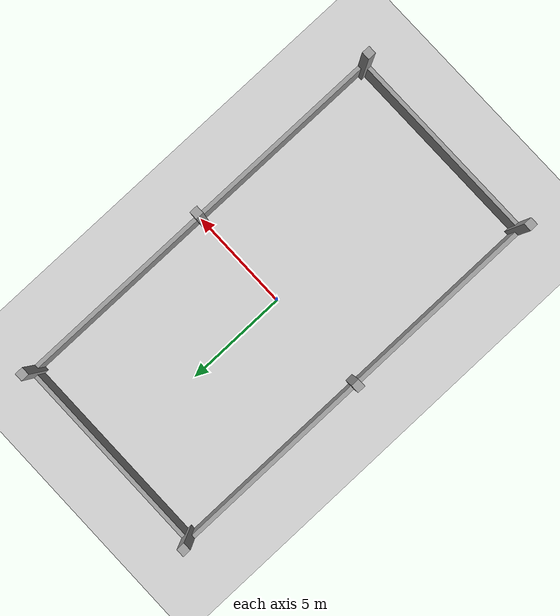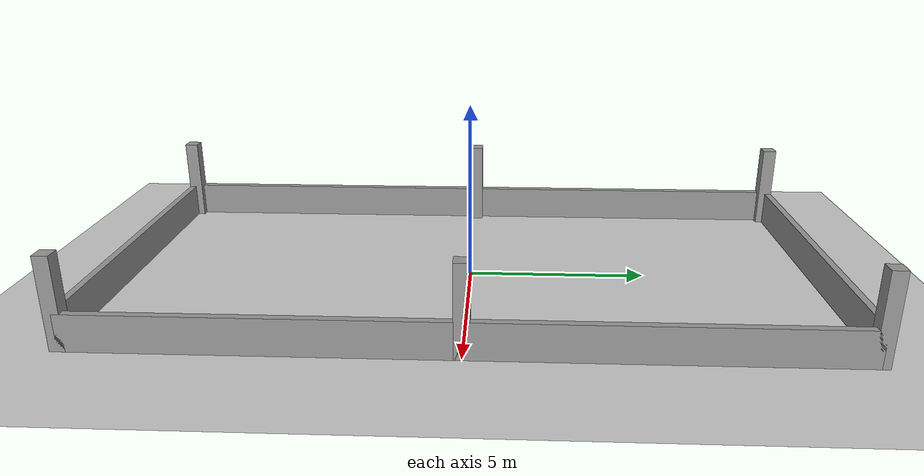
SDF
<sdf version="1.7">
 <world name="default">
  <light name="sun" type="directional">
   <pose>0 0 10 0 -0 0</pose>
   <diffuse>0.8 0.8 0.8 1</diffuse>
   <specular>0.2 0.2 0.2 1</specular>
   <attenuation>
    <range>1000</range>
    <constant>0.9</constant>
    <linear>0.01</linear>
    <quadratic>0.001</quadratic>
   </attenuation>
   <direction>-0.5 0.1 -0.9</direction>
   <spot><inner_angle>0</inner_angle><outer_angle>0</outer_angle><falloff>0</falloff></spot>
  </light>
  <model name="ground_plane">
   <static>1</static>
   <link name="link">
    <collision name="collision">
     <geometry><plane><normal>0 0 1</normal><size>100 100</size></plane></geometry>
     <surface>
      <contact><collide_bitmask>65535</collide_bitmask></contact>
      <friction><ode><mu>100</mu><mu2>50</mu2></ode></friction>
     </surface>
    </collision>
    <visual name="visual">
     <cast_shadows>0</cast_shadows>
     <geometry><plane><normal>0 0 1</normal><size>100 100</size></plane></geometry>
     <material>
      <script><uri>file://media/materials/scripts/gazebo.material</uri><name>Gazebo/Grey</name></script>
     </material>
    </visual>
   </link>
  </model>
  <gravity>0 0 -9.8</gravity>
  <magnetic_field>6e-06 2.3e-05 -4.2e-05</magnetic_field>
  <atmosphere type="adiabatic"/>
  <physics type="ode">
   <max_step_size>0.001</max_step_size>
   <real_time_factor>1</real_time_factor>
   <real_time_update_rate>1000</real_time_update_rate>
  </physics>
  <scene><ambient>0.4 0.4 0.4 1</ambient><background>0.7 0.7 0.7 1</background><shadows>1</shadows></scene>
  <spherical_coordinates>
   <surface_model>EARTH_WGS84</surface_model>
   <latitude_deg>0</latitude_deg>
   <longitude_deg>0</longitude_deg>
   <elevation>0</elevation>
   <heading_deg>0</heading_deg>
  </spherical_coordinates>
  <model name="basic_tcs_outline">
   <link name="link_1">
    <inertial>
     <mass>3900</mass>
     <inertia><ixx>338</ixx><ixy>0</ixy><ixz>0</ixz><iyy>31220.3</iyy><iyz>0</iyz><izz>30908.3</izz></inertia>
    </inertial>
    <pose>-9.85 -0 -0.45 0 -0 1.5707</pose>
    <gravity>0</gravity>
    <visual name="visual">
     <geometry><box><size>9.75 0.2 1</size></box></geometry>
     <material>
      <lighting>1</lighting>
      <script><uri>file://media/materials/scripts/gazebo.material</uri><name>Gazebo/Grey</name></script>
      <shader type="pixel"><normal_map>__default__</normal_map></shader>
      <ambient>0.8 0.8 0.8 1</ambient>
      <diffuse>0.7 0.7 0.7 1</diffuse>
      <specular>0.01 0.01 0.01 1</specular>
      <emissive>0 0 0 1</emissive>
     </material>
    </visual>
    <collision name="collision">
     <geometry><box><size>9.75 0.2 1</size></box></geometry>
     <surface>
      <friction>
       <ode><mu>1</mu><mu2>1</mu2><fdir1>0 0 0</fdir1><slip1>0</slip1><slip2>0</slip2></ode>
       <torsional>
        <coefficient>1</coefficient>
        <patch_radius>0</patch_radius>
        <surface_radius>0</surface_radius>
        <use_patch_radius>1</use_patch_radius>
        <ode><slip>0</slip></ode>
       </torsional>
      </friction>
      <bounce><restitution_coefficient>0</restitution_coefficient><threshold>1e+06</threshold></bounce>
      <contact>
       <collide_without_contact>0</collide_without_contact>
       <collide_without_contact_bitmask>1</collide_without_contact_bitmask>
       <collide_bitmask>1</collide_bitmask>
       <ode>
        <soft_cfm>0</soft_cfm>
        <soft_erp>0.2</soft_erp>
        <kp>1e+13</kp>
        <kd>1</kd>
        <max_vel>0.01</max_vel>
        <min_depth>0</min_depth>
       </ode>
       <bullet>
        <split_impulse>1</split_impulse>
        <split_impulse_penetration_threshold>-0.01</split_impulse_penetration_threshold>
        <soft_cfm>0</soft_cfm>
        <soft_erp>0.2</soft_erp>
        <kp>1e+13</kp>
        <kd>1</kd>
       </bullet>
      </contact>
     </surface>
    </collision>
   </link>
   <link name="link_1_clone">
    <inertial>
     <mass>3900</mass>
     <inertia><ixx>338</ixx><ixy>0</ixy><ixz>0</ixz><iyy>31220.3</iyy><iyz>0</iyz><izz>30908.3</izz></inertia>
     <pose>0 0 0 0 -0 1.5707</pose>
    </inertial>
    <pose>9.85 0 -0.45 0 0 -1.5708</pose>
    <gravity>0</gravity>
    <visual name="visual">
     <geometry><box><size>9.75 0.2 1</size></box></geometry>
     <material>
      <lighting>1</lighting>
      <script><uri>file://media/materials/scripts/gazebo.material</uri><name>Gazebo/Grey</name></script>
      <shader type="pixel"><normal_map>__default__</normal_map></shader>
      <ambient>0.8 0.8 0.8 1</ambient>
      <diffuse>0.7 0.7 0.7 1</diffuse>
      <specular>0.01 0.01 0.01 1</specular>
      <emissive>0 0 0 1</emissive>
     </material>
    </visual>
    <collision name="collision">
     <geometry><box><size>9.75 0.2 1</size></box></geometry>
     <surface>
      <friction>
       <ode><mu>1</mu><mu2>1</mu2><fdir1>0 0 0</fdir1><slip1>0</slip1><slip2>0</slip2></ode>
       <torsional>
        <coefficient>1</coefficient>
        <patch_radius>0</patch_radius>
        <surface_radius>0</surface_radius>
        <use_patch_radius>1</use_patch_radius>
        <ode><slip>0</slip></ode>
       </torsional>
      </friction>
      <bounce><restitution_coefficient>0</restitution_coefficient><threshold>1e+06</threshold></bounce>
      <contact>
       <collide_without_contact>0</collide_without_contact>
       <collide_without_contact_bitmask>1</collide_without_contact_bitmask>
       <collide_bitmask>1</collide_bitmask>
       <ode>
        <soft_cfm>0</soft_cfm>
        <soft_erp>0.2</soft_erp>
        <kp>1e+13</kp>
        <kd>1</kd>
        <max_vel>0.01</max_vel>
        <min_depth>0</min_depth>
       </ode>
       <bullet>
        <split_impulse>1</split_impulse>
        <split_impulse_penetration_threshold>-0.01</split_impulse_penetration_threshold>
        <soft_cfm>0</soft_cfm>
        <soft_erp>0.2</soft_erp>
        <kp>1e+13</kp>
        <kd>1</kd>
       </bullet>
      </contact>
     </surface>
    </collision>
   </link>
   <link name="link_2">
    <inertial>
     <mass>7800</mass>
     <inertia><ixx>676</ixx><ixy>0</ixy><ixz>0</ixz><iyy>247812</iyy><iyz>0</iyz><izz>247188</izz></inertia>
    </inertial>
    <pose>0 -4.975 -0.45 -0 -0 -0</pose>
    <gravity>0</gravity>
    <visual name="visual">
     <geometry><box><size>19.5 0.2 1</size></box></geometry>
     <material>
      <lighting>1</lighting>
      <script><uri>file://media/materials/scripts/gazebo.material</uri><name>Gazebo/Grey</name></script>
      <shader type="pixel"><normal_map>__default__</normal_map></shader>
      <ambient>0.8 0.8 0.8 1</ambient>
      <diffuse>0.7 0.7 0.7 1</diffuse>
      <specular>0.01 0.01 0.01 1</specular>
      <emissive>0 0 0 1</emissive>
     </material>
    </visual>
    <collision name="collision">
     <geometry><box><size>19.5 0.2 1</size></box></geometry>
     <surface>
      <friction>
       <ode><mu>1</mu><mu2>1</mu2><fdir1>0 0 0</fdir1><slip1>0</slip1><slip2>0</slip2></ode>
       <torsional>
        <coefficient>1</coefficient>
        <patch_radius>0</patch_radius>
        <surface_radius>0</surface_radius>
        <use_patch_radius>1</use_patch_radius>
        <ode><slip>0</slip></ode>
       </torsional>
      </friction>
      <bounce><restitution_coefficient>0</restitution_coefficient><threshold>1e+06</threshold></bounce>
      <contact>
       <collide_without_contact>0</collide_without_contact>
       <collide_without_contact_bitmask>1</collide_without_contact_bitmask>
       <collide_bitmask>1</collide_bitmask>
       <ode>
        <soft_cfm>0</soft_cfm>
        <soft_erp>0.2</soft_erp>
        <kp>1e+13</kp>
        <kd>1</kd>
        <max_vel>0.01</max_vel>
        <min_depth>0</min_depth>
       </ode>
       <bullet>
        <split_impulse>1</split_impulse>
        <split_impulse_penetration_threshold>-0.01</split_impulse_penetration_threshold>
        <soft_cfm>0</soft_cfm>
        <soft_erp>0.2</soft_erp>
        <kp>1e+13</kp>
        <kd>1</kd>
       </bullet>
      </contact>
     </surface>
    </collision>
   </link>
   <link name="link_2_clone">
    <inertial>
     <mass>7800</mass>
     <inertia><ixx>676</ixx><ixy>0</ixy><ixz>0</ixz><iyy>247812</iyy><iyz>0</iyz><izz>247188</izz></inertia>
    </inertial>
    <pose>-0 4.975 -0.45 -0 -0 -0</pose>
    <gravity>0</gravity>
    <visual name="visual">
     <geometry><box><size>19.5 0.2 1</size></box></geometry>
     <material>
      <lighting>1</lighting>
      <script><uri>file://media/materials/scripts/gazebo.material</uri><name>Gazebo/Grey</name></script>
      <shader type="pixel"><normal_map>__default__</normal_map></shader>
      <ambient>0.8 0.8 0.8 1</ambient>
      <diffuse>0.7 0.7 0.7 1</diffuse>
      <specular>0.01 0.01 0.01 1</specular>
      <emissive>0 0 0 1</emissive>
     </material>
    </visual>
    <collision name="collision">
     <geometry><box><size>19.5 0.2 1</size></box></geometry>
     <surface>
      <friction>
       <ode><mu>1</mu><mu2>1</mu2><fdir1>0 0 0</fdir1><slip1>0</slip1><slip2>0</slip2></ode>
       <torsional>
        <coefficient>1</coefficient>
        <patch_radius>0</patch_radius>
        <surface_radius>0</surface_radius>
        <use_patch_radius>1</use_patch_radius>
        <ode><slip>0</slip></ode>
       </torsional>
      </friction>
      <bounce><restitution_coefficient>0</restitution_coefficient><threshold>1e+06</threshold></bounce>
      <contact>
       <collide_without_contact>0</collide_without_contact>
       <collide_without_contact_bitmask>1</collide_without_contact_bitmask>
       <collide_bitmask>1</collide_bitmask>
       <ode>
        <soft_cfm>0</soft_cfm>
        <soft_erp>0.2</soft_erp>
        <kp>1e+13</kp>
        <kd>1</kd>
        <max_vel>0.01</max_vel>
        <min_depth>0</min_depth>
       </ode>
       <bullet>
        <split_impulse>1</split_impulse>
        <split_impulse_penetration_threshold>-0.01</split_impulse_penetration_threshold>
        <soft_cfm>0</soft_cfm>
        <soft_erp>0.2</soft_erp>
        <kp>1e+13</kp>
        <kd>1</kd>
       </bullet>
      </contact>
     </surface>
    </collision>
   </link>
   <link name="link_3">
    <inertial>
     <mass>800</mass>
     <inertia><ixx>427.333</ixx><ixy>0</ixy><ixz>0</ixz><iyy>427.333</iyy><iyz>0</iyz><izz>21.3333</izz></inertia>
    </inertial>
    <pose>-9.75 -4.875 0.3 -0 -0 -0</pose>
    <gravity>0</gravity>
    <visual name="visual">
     <geometry><box><size>0.4 0.4 2.5</size></box></geometry>
     <material>
      <lighting>1</lighting>
      <script><uri>file://media/materials/scripts/gazebo.material</uri><name>Gazebo/Grey</name></script>
      <shader type="pixel"><normal_map>__default__</normal_map></shader>
      <ambient>1 1 1 1</ambient>
      <diffuse>0.7 0.7 0.7 1</diffuse>
      <specular>0.01 0.01 0.01 1</specular>
      <emissive>0 0 0 1</emissive>
     </material>
    </visual>
    <collision name="collision">
     <geometry><box><size>0.4 0.4 2.5</size></box></geometry>
     <surface>
      <friction>
       <ode><mu>1</mu><mu2>1</mu2><fdir1>0 0 0</fdir1><slip1>0</slip1><slip2>0</slip2></ode>
       <torsional>
        <coefficient>1</coefficient>
        <patch_radius>0</patch_radius>
        <surface_radius>0</surface_radius>
        <use_patch_radius>1</use_patch_radius>
        <ode><slip>0</slip></ode>
       </torsional>
      </friction>
      <bounce><restitution_coefficient>0</restitution_coefficient><threshold>1e+06</threshold></bounce>
      <contact>
       <collide_without_contact>0</collide_without_contact>
       <collide_without_contact_bitmask>1</collide_without_contact_bitmask>
       <collide_bitmask>1</collide_bitmask>
       <ode>
        <soft_cfm>0</soft_cfm>
        <soft_erp>0.2</soft_erp>
        <kp>1e+13</kp>
        <kd>1</kd>
        <max_vel>0.01</max_vel>
        <min_depth>0</min_depth>
       </ode>
       <bullet>
        <split_impulse>1</split_impulse>
        <split_impulse_penetration_threshold>-0.01</split_impulse_penetration_threshold>
        <soft_cfm>0</soft_cfm>
        <soft_erp>0.2</soft_erp>
        <kp>1e+13</kp>
        <kd>1</kd>
       </bullet>
      </contact>
     </surface>
    </collision>
   </link>
   <link name="link_3_clone">
    <inertial>
     <mass>800</mass>
     <inertia><ixx>427.333</ixx><ixy>0</ixy><ixz>0</ixz><iyy>427.333</iyy><iyz>0</iyz><izz>21.3333</izz></inertia>
    </inertial>
    <pose>-9.75 4.875 0.3 -0 -0 -0</pose>
    <gravity>0</gravity>
    <visual name="visual">
     <geometry><box><size>0.4 0.4 2.5</size></box></geometry>
     <material>
      <lighting>1</lighting>
      <script><uri>file://media/materials/scripts/gazebo.material</uri><name>Gazebo/Grey</name></script>
      <shader type="pixel"><normal_map>__default__</normal_map></shader>
      <ambient>1 1 1 1</ambient>
      <diffuse>0.7 0.7 0.7 1</diffuse>
      <specular>0.01 0.01 0.01 1</specular>
      <emissive>0 0 0 1</emissive>
     </material>
    </visual>
    <collision name="collision">
     <geometry><box><size>0.4 0.4 2.5</size></box></geometry>
     <surface>
      <friction>
       <ode><mu>1</mu><mu2>1</mu2><fdir1>0 0 0</fdir1><slip1>0</slip1><slip2>0</slip2></ode>
       <torsional>
        <coefficient>1</coefficient>
        <patch_radius>0</patch_radius>
        <surface_radius>0</surface_radius>
        <use_patch_radius>1</use_patch_radius>
        <ode><slip>0</slip></ode>
       </torsional>
      </friction>
      <bounce><restitution_coefficient>0</restitution_coefficient><threshold>1e+06</threshold></bounce>
      <contact>
       <collide_without_contact>0</collide_without_contact>
       <collide_without_contact_bitmask>1</collide_without_contact_bitmask>
       <collide_bitmask>1</collide_bitmask>
       <ode>
        <soft_cfm>0</soft_cfm>
        <soft_erp>0.2</soft_erp>
        <kp>1e+13</kp>
        <kd>1</kd>
        <max_vel>0.01</max_vel>
        <min_depth>0</min_depth>
       </ode>
       <bullet>
        <split_impulse>1</split_impulse>
        <split_impulse_penetration_threshold>-0.01</split_impulse_penetration_threshold>
        <soft_cfm>0</soft_cfm>
        <soft_erp>0.2</soft_erp>
        <kp>1e+13</kp>
        <kd>1</kd>
       </bullet>
      </contact>
     </surface>
    </collision>
   </link>
   <link name="link_3_clone_0">
    <inertial>
     <mass>800</mass>
     <inertia><ixx>427.333</ixx><ixy>0</ixy><ixz>0</ixz><iyy>427.333</iyy><iyz>0</iyz><izz>21.3333</izz></inertia>
    </inertial>
    <pose>0 -4.875 0.3 -0 -0 -0</pose>
    <gravity>0</gravity>
    <visual name="visual">
     <geometry><box><size>0.4 0.4 2.5</size></box></geometry>
     <material>
      <lighting>1</lighting>
      <script><uri>file://media/materials/scripts/gazebo.material</uri><name>Gazebo/Grey</name></script>
      <shader type="pixel"><normal_map>__default__</normal_map></shader>
      <ambient>1 1 1 1</ambient>
      <diffuse>0.7 0.7 0.7 1</diffuse>
      <specular>0.01 0.01 0.01 1</specular>
      <emissive>0 0 0 1</emissive>
     </material>
    </visual>
    <collision name="collision">
     <geometry><box><size>0.4 0.4 2.5</size></box></geometry>
     <surface>
      <friction>
       <ode><mu>1</mu><mu2>1</mu2><fdir1>0 0 0</fdir1><slip1>0</slip1><slip2>0</slip2></ode>
       <torsional>
        <coefficient>1</coefficient>
        <patch_radius>0</patch_radius>
        <surface_radius>0</surface_radius>
        <use_patch_radius>1</use_patch_radius>
        <ode><slip>0</slip></ode>
       </torsional>
      </friction>
      <bounce><restitution_coefficient>0</restitution_coefficient><threshold>1e+06</threshold></bounce>
      <contact>
       <collide_without_contact>0</collide_without_contact>
       <collide_without_contact_bitmask>1</collide_without_contact_bitmask>
       <collide_bitmask>1</collide_bitmask>
       <ode>
        <soft_cfm>0</soft_cfm>
        <soft_erp>0.2</soft_erp>
        <kp>1e+13</kp>
        <kd>1</kd>
        <max_vel>0.01</max_vel>
        <min_depth>0</min_depth>
       </ode>
       <bullet>
        <split_impulse>1</split_impulse>
        <split_impulse_penetration_threshold>-0.01</split_impulse_penetration_threshold>
        <soft_cfm>0</soft_cfm>
        <soft_erp>0.2</soft_erp>
        <kp>1e+13</kp>
        <kd>1</kd>
       </bullet>
      </contact>
     </surface>
    </collision>
   </link>
   <link name="link_3_clone_1">
    <inertial>
     <mass>800</mass>
     <inertia><ixx>427.333</ixx><ixy>0</ixy><ixz>0</ixz><iyy>427.333</iyy><iyz>0</iyz><izz>21.3333</izz></inertia>
    </inertial>
    <pose>0 4.875 0.3 -0 -0 -0</pose>
    <gravity>0</gravity>
    <visual name="visual">
     <geometry><box><size>0.4 0.4 2.5</size></box></geometry>
     <material>
      <lighting>1</lighting>
      <script><uri>file://media/materials/scripts/gazebo.material</uri><name>Gazebo/Grey</name></script>
      <shader type="pixel"><normal_map>__default__</normal_map></shader>
      <ambient>1 1 1 1</ambient>
      <diffuse>0.7 0.7 0.7 1</diffuse>
      <specular>0.01 0.01 0.01 1</specular>
      <emissive>0 0 0 1</emissive>
     </material>
    </visual>
    <collision name="collision">
     <geometry><box><size>0.4 0.4 2.5</size></box></geometry>
     <surface>
      <friction>
       <ode><mu>1</mu><mu2>1</mu2><fdir1>0 0 0</fdir1><slip1>0</slip1><slip2>0</slip2></ode>
       <torsional>
        <coefficient>1</coefficient>
        <patch_radius>0</patch_radius>
        <surface_radius>0</surface_radius>
        <use_patch_radius>1</use_patch_radius>
        <ode><slip>0</slip></ode>
       </torsional>
      </friction>
      <bounce><restitution_coefficient>0</restitution_coefficient><threshold>1e+06</threshold></bounce>
      <contact>
       <collide_without_contact>0</collide_without_contact>
       <collide_without_contact_bitmask>1</collide_without_contact_bitmask>
       <collide_bitmask>1</collide_bitmask>
       <ode>
        <soft_cfm>0</soft_cfm>
        <soft_erp>0.2</soft_erp>
        <kp>1e+13</kp>
        <kd>1</kd>
        <max_vel>0.01</max_vel>
        <min_depth>0</min_depth>
       </ode>
       <bullet>
        <split_impulse>1</split_impulse>
        <split_impulse_penetration_threshold>-0.01</split_impulse_penetration_threshold>
        <soft_cfm>0</soft_cfm>
        <soft_erp>0.2</soft_erp>
        <kp>1e+13</kp>
        <kd>1</kd>
       </bullet>
      </contact>
     </surface>
    </collision>
   </link>
   <link name="link_3_clone_2">
    <inertial>
     <mass>800</mass>
     <inertia><ixx>427.333</ixx><ixy>0</ixy><ixz>0</ixz><iyy>427.333</iyy><iyz>0</iyz><izz>21.3333</izz></inertia>
    </inertial>
    <pose>9.75 -4.875 0.3 -0 -0 -0</pose>
    <gravity>0</gravity>
    <visual name="visual">
     <geometry><box><size>0.4 0.4 2.5</size></box></geometry>
     <material>
      <lighting>1</lighting>
      <script><uri>file://media/materials/scripts/gazebo.material</uri><name>Gazebo/Grey</name></script>
      <shader type="pixel"><normal_map>__default__</normal_map></shader>
      <ambient>1 1 1 1</ambient>
      <diffuse>0.7 0.7 0.7 1</diffuse>
      <specular>0.01 0.01 0.01 1</specular>
      <emissive>0 0 0 1</emissive>
     </material>
    </visual>
    <collision name="collision">
     <geometry><box><size>0.4 0.4 2.5</size></box></geometry>
     <surface>
      <friction>
       <ode><mu>1</mu><mu2>1</mu2><fdir1>0 0 0</fdir1><slip1>0</slip1><slip2>0</slip2></ode>
       <torsional>
        <coefficient>1</coefficient>
        <patch_radius>0</patch_radius>
        <surface_radius>0</surface_radius>
        <use_patch_radius>1</use_patch_radius>
        <ode><slip>0</slip></ode>
       </torsional>
      </friction>
      <bounce><restitution_coefficient>0</restitution_coefficient><threshold>1e+06</threshold></bounce>
      <contact>
       <collide_without_contact>0</collide_without_contact>
       <collide_without_contact_bitmask>1</collide_without_contact_bitmask>
       <collide_bitmask>1</collide_bitmask>
       <ode>
        <soft_cfm>0</soft_cfm>
        <soft_erp>0.2</soft_erp>
        <kp>1e+13</kp>
        <kd>1</kd>
        <max_vel>0.01</max_vel>
        <min_depth>0</min_depth>
       </ode>
       <bullet>
        <split_impulse>1</split_impulse>
        <split_impulse_penetration_threshold>-0.01</split_impulse_penetration_threshold>
        <soft_cfm>0</soft_cfm>
        <soft_erp>0.2</soft_erp>
        <kp>1e+13</kp>
        <kd>1</kd>
       </bullet>
      </contact>
     </surface>
    </collision>
   </link>
   <link name="link_3_clone_3">
    <inertial>
     <mass>800</mass>
     <inertia><ixx>427.333</ixx><ixy>0</ixy><ixz>0</ixz><iyy>427.333</iyy><iyz>0</iyz><izz>21.3333</izz></inertia>
    </inertial>
    <pose>9.75 4.875 0.3 -0 -0 -0</pose>
    <gravity>0</gravity>
    <visual name="visual">
     <geometry><box><size>0.4 0.4 2.5</size></box></geometry>
     <material>
      <lighting>1</lighting>
      <script><uri>file://media/materials/scripts/gazebo.material</uri><name>Gazebo/Grey</name></script>
      <shader type="pixel"><normal_map>__default__</normal_map></shader>
      <ambient>1 1 1 1</ambient>
      <diffuse>0.7 0.7 0.7 1</diffuse>
      <specular>0.01 0.01 0.01 1</specular>
      <emissive>0 0 0 1</emissive>
     </material>
    </visual>
    <collision name="collision">
     <geometry><box><size>0.4 0.4 2.5</size></box></geometry>
     <surface>
      <friction>
       <ode><mu>1</mu><mu2>1</mu2><fdir1>0 0 0</fdir1><slip1>0</slip1><slip2>0</slip2></ode>
       <torsional>
        <coefficient>1</coefficient>
        <patch_radius>0</patch_radius>
        <surface_radius>0</surface_radius>
        <use_patch_radius>1</use_patch_radius>
        <ode><slip>0</slip></ode>
       </torsional>
      </friction>
      <bounce><restitution_coefficient>0</restitution_coefficient><threshold>1e+06</threshold></bounce>
      <contact>
       <collide_without_contact>0</collide_without_contact>
       <collide_without_contact_bitmask>1</collide_without_contact_bitmask>
       <collide_bitmask>1</collide_bitmask>
       <ode>
        <soft_cfm>0</soft_cfm>
        <soft_erp>0.2</soft_erp>
        <kp>1e+13</kp>
        <kd>1</kd>
        <max_vel>0.01</max_vel>
        <min_depth>0</min_depth>
       </ode>
       <bullet>
        <split_impulse>1</split_impulse>
        <split_impulse_penetration_threshold>-0.01</split_impulse_penetration_threshold>
        <soft_cfm>0</soft_cfm>
        <soft_erp>0.2</soft_erp>
        <kp>1e+13</kp>
        <kd>1</kd>
       </bullet>
      </contact>
     </surface>
    </collision>
   </link>
   <static>0</static>
   <pose>-0 -1e-06 0.950163 0 1e-06 -1.5708</pose>
  </model>
 </world>
</sdf>
